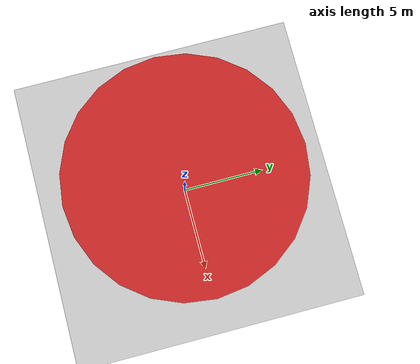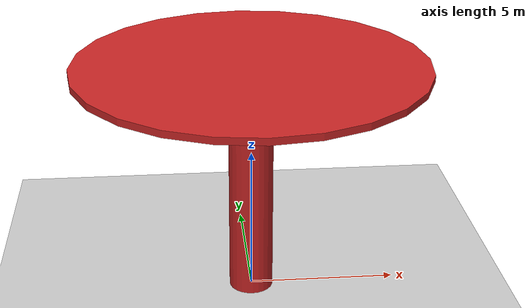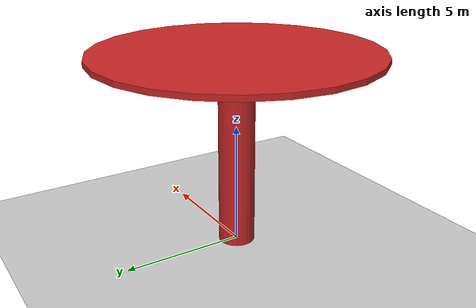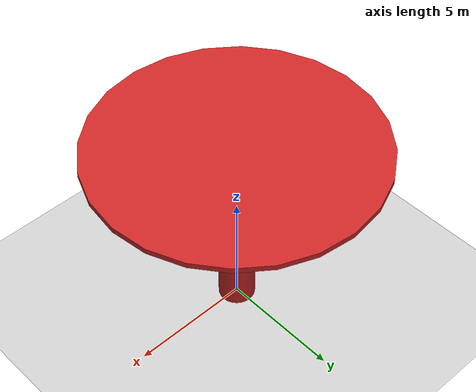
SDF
<sdf version="1.6">
 <world name="default">
  <light name="sun" type="directional">
   <pose>0 0 10 0 -0 0</pose>
   <diffuse>0.8 0.8 0.8 1</diffuse>
   <specular>0.1 0.1 0.1 1</specular>
   <attenuation>
    <range>1000</range>
    <constant>0.9</constant>
    <linear>0.01</linear>
    <quadratic>0.001</quadratic>
   </attenuation>
   <direction>-0.5 0.5 -1</direction>
  </light>
  <model name="ground_plane">
   <static>1</static>
   <link name="link">
    <collision name="collision">
     <geometry><plane><normal>0 0 1</normal><size>100 100</size></plane></geometry>
     <surface><friction><ode><mu>100</mu><mu2>50</mu2></ode></friction></surface>
    </collision>
    <visual name="visual">
     <cast_shadows>0</cast_shadows>
     <geometry><plane><normal>0 0 1</normal><size>100 100</size></plane></geometry>
     <material>
      <script><uri>file://media/materials/scripts/gazebo.material</uri><name>Gazebo/Grey</name></script>
     </material>
    </visual>
   </link>
  </model>
  <gravity>0 0 -9.8</gravity>
  <magnetic_field>6e-06 2.3e-05 -4.2e-05</magnetic_field>
  <atmosphere type="adiabatic"/>
  <physics name="default_physics" default="0" type="ode">
   <max_step_size>0.001</max_step_size>
   <real_time_factor>1</real_time_factor>
   <real_time_update_rate>1000</real_time_update_rate>
  </physics>
  <scene><ambient>0.4 0.4 0.4 1</ambient><background>0.7 0.7 0.7 1</background><shadows>1</shadows></scene>
  <spherical_coordinates>
   <surface_model>EARTH_WGS84</surface_model>
   <latitude_deg>0</latitude_deg>
   <longitude_deg>0</longitude_deg>
   <elevation>0</elevation>
   <heading_deg>0</heading_deg>
  </spherical_coordinates>
  <model name="Ring">
   <link name="link_0">
    <inertial>
     <mass>7.84854</mass>
     <inertia><ixx>40.7795</ixx><ixy>0</ixy><ixz>0</ixz><iyy>40.7795</iyy><iyz>0</iyz><izz>0.981068</izz></inertia>
    </inertial>
    <visual name="visual">
     <geometry><cylinder><radius>0.75</radius><length>7.84854</length></cylinder></geometry>
     <material>
      <lighting>1</lighting>
      <script><uri>file://media/materials/scripts/gazebo.material</uri><name>Gazebo/Red</name></script>
      <ambient>0.3 0.3 0.3 1</ambient>
      <diffuse>0.7 0.7 0.7 1</diffuse>
      <specular>0.01 0.01 0.01 1</specular>
      <emissive>0 0 0 1</emissive>
      <shader type="vertex"><normal_map>__default__</normal_map></shader>
     </material>
    </visual>
    <collision name="collision">
     <geometry><cylinder><radius>0.5</radius><length>7.84854</length></cylinder></geometry>
     <surface>
      <friction>
       <ode><mu>1</mu><mu2>1</mu2><fdir1>0 0 0</fdir1><slip1>0</slip1><slip2>0</slip2></ode>
       <torsional>
        <coefficient>1</coefficient>
        <patch_radius>0</patch_radius>
        <surface_radius>0</surface_radius>
        <use_patch_radius>1</use_patch_radius>
        <ode><slip>0</slip></ode>
       </torsional>
      </friction>
      <bounce><restitution_coefficient>0</restitution_coefficient><threshold>1e+06</threshold></bounce>
      <contact>
       <collide_without_contact>0</collide_without_contact>
       <collide_without_contact_bitmask>1</collide_without_contact_bitmask>
       <collide_bitmask>1</collide_bitmask>
       <ode>
        <soft_cfm>0</soft_cfm>
        <soft_erp>0.2</soft_erp>
        <kp>1e+13</kp>
        <kd>1</kd>
        <max_vel>0.01</max_vel>
        <min_depth>0</min_depth>
       </ode>
       <bullet>
        <split_impulse>1</split_impulse>
        <split_impulse_penetration_threshold>-0.01</split_impulse_penetration_threshold>
        <soft_cfm>0</soft_cfm>
        <soft_erp>0.2</soft_erp>
        <kp>1e+13</kp>
        <kd>1</kd>
       </bullet>
      </contact>
     </surface>
    </collision>
   </link>
   <link name="link_2">
    <pose>0 0 4.1078 0 -0 0</pose>
    <inertial>
     <mass>31.8732</mass>
     <inertia><ixx>273.843</ixx><ixy>0</ixy><ixz>0</ixz><iyy>273.843</iyy><iyz>0</iyz><izz>547.399</izz></inertia>
    </inertial>
    <visual name="visual">
     <geometry><cylinder><radius>5.8607</radius><length>0.23202</length></cylinder></geometry>
     <material>
      <lighting>1</lighting>
      <script><uri>file://media/materials/scripts/gazebo.material</uri><name>Gazebo/Red</name></script>
      <ambient>0.3 0.3 0.3 1</ambient>
      <diffuse>0.7 0.7 0.7 1</diffuse>
      <specular>0.01 0.01 0.01 1</specular>
      <emissive>0 0 0 1</emissive>
      <shader type="vertex"><normal_map>__default__</normal_map></shader>
     </material>
    </visual>
    <collision name="collision">
     <geometry><cylinder><radius>5.8607</radius><length>0.23202</length></cylinder></geometry>
     <surface>
      <friction>
       <ode><mu>1</mu><mu2>1</mu2><fdir1>0 0 0</fdir1><slip1>0</slip1><slip2>0</slip2></ode>
       <torsional>
        <coefficient>1</coefficient>
        <patch_radius>0</patch_radius>
        <surface_radius>0</surface_radius>
        <use_patch_radius>1</use_patch_radius>
        <ode><slip>0</slip></ode>
       </torsional>
      </friction>
      <bounce><restitution_coefficient>0</restitution_coefficient><threshold>1e+06</threshold></bounce>
      <contact>
       <collide_without_contact>0</collide_without_contact>
       <collide_without_contact_bitmask>1</collide_without_contact_bitmask>
       <collide_bitmask>1</collide_bitmask>
       <ode>
        <soft_cfm>0</soft_cfm>
        <soft_erp>0.2</soft_erp>
        <kp>1e+13</kp>
        <kd>1</kd>
        <max_vel>0.01</max_vel>
        <min_depth>0</min_depth>
       </ode>
       <bullet>
        <split_impulse>1</split_impulse>
        <split_impulse_penetration_threshold>-0.01</split_impulse_penetration_threshold>
        <soft_cfm>0</soft_cfm>
        <soft_erp>0.2</soft_erp>
        <kp>1e+13</kp>
        <kd>1</kd>
       </bullet>
      </contact>
     </surface>
    </collision>
   </link>
   <joint name="link_2_JOINT_0" type="revolute">
    <parent>link_0</parent>
    <child>link_2</child>
    <axis>
     <xyz>0 0 1</xyz>
     <use_parent_model_frame>0</use_parent_model_frame>
     <limit>
      <lower>-1.79769e+308</lower>
      <upper>1.79769e+308</upper>
      <effort>-1</effort>
      <velocity>-1</velocity>
     </limit>
     <dynamics>
      <spring_reference>0</spring_reference>
      <spring_stiffness>0</spring_stiffness>
      <damping>0</damping>
      <friction>0</friction>
     </dynamics>
    </axis>
    <physics>
     <ode><limit><cfm>0</cfm><erp>0.2</erp></limit><suspension><cfm>0</cfm><erp>0.2</erp></suspension></ode>
    </physics>
   </joint>
   <static>0</static>
   <pose>-0.015252 -0.002481 3.92427 0 -4e-06 0.000626</pose>
  </model>
 </world>
</sdf>
